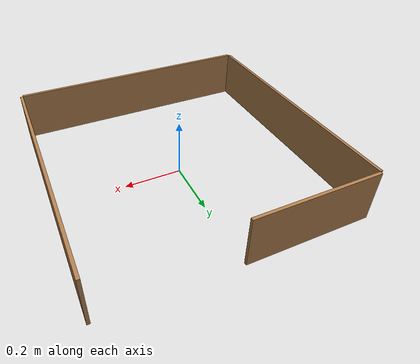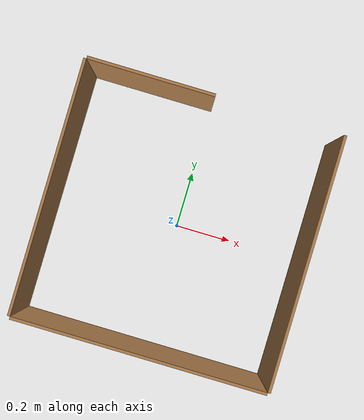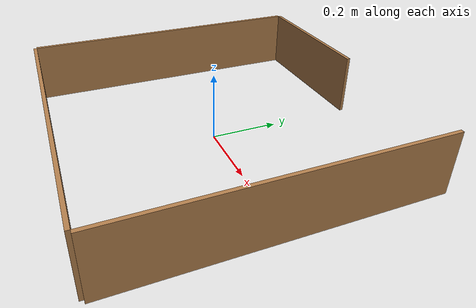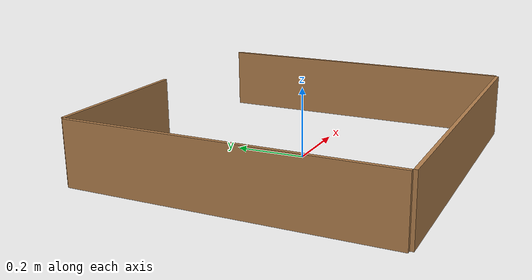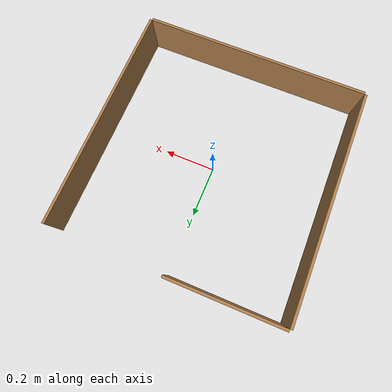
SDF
<?xml version="1.0"?>
<sdf version="1.4">
<model name="task3_room2">
  <static>false</static>
  <link name='room_2'>
    <pose frame=''>0 0 0.09 0 0 0</pose>
    <collision name='long_1coll'>
      <geometry>
        <box>
          <size>0.01 0.88 0.18</size>
        </box>
      </geometry>
      <pose frame=''>-0.445 0 0 0 0 0</pose>
    </collision>
    <visual name='long_1vis'>
      <pose frame=''>-0.445 0 0 0 0 0</pose>
      <geometry>
        <box>
          <size>0.01 0.88 0.18</size>
        </box>
      </geometry>
      <material>
        <script>
          <uri>file://media/materials/scripts/gazebo.material</uri>
          <name>Gazebo/Wood</name>
        </script>
      </material>
    </visual>
    <collision name='short_1coll'>
      <geometry>
        <box>
          <size>0.44 0.01 0.18</size>
        </box>
      </geometry>
      <pose frame=''>-0.22 0.445 0 0 0 0</pose>
    </collision>
    <visual name='short_1vis'>
      <pose frame=''>-0.22 0.445 0 0 0 0</pose>
      <geometry>
        <box>
          <size>0.44 0.01 0.18</size>
        </box>
      </geometry>
      <material>
        <script>
          <uri>file://media/materials/scripts/gazebo.material</uri>
          <name>Gazebo/Wood</name>
        </script>
      </material>
    </visual>
    <collision name='long_2coll'>
      <geometry>
        <box>
          <size>0.88 0.01 0.18</size>
        </box>
      </geometry>
      <pose frame=''>0 -0.445 0 0 0 0</pose>
    </collision>
    <visual name='long_2vis'>
      <pose frame=''>0 -0.445 0 0 0 0</pose>
      <geometry>
        <box>
          <size>0.88 0.01 0.18</size>
        </box>
      </geometry>
      <material>
        <script>
          <uri>file://media/materials/scripts/gazebo.material</uri>
          <name>Gazebo/Wood</name>
        </script>
      </material>
    </visual>
    <collision name='long_3coll'>
      <geometry>
        <box>
          <size>0.01 0.88 0.18</size>
        </box>
      </geometry>
      <pose frame=''>0.445 0 0 0 0 0</pose>
    </collision>
    <visual name='long_3vis'>
      <pose frame=''>0.445 0 0 0 0 0</pose>
      <geometry>
        <box>
          <size>0.01 0.88 0.18</size>
        </box>
      </geometry>
      <material>
        <script>
          <uri>file://media/materials/scripts/gazebo.material</uri>
          <name>Gazebo/Wood</name>
        </script>
      </material>
    </visual>
  </link>
</model>
</sdf>
